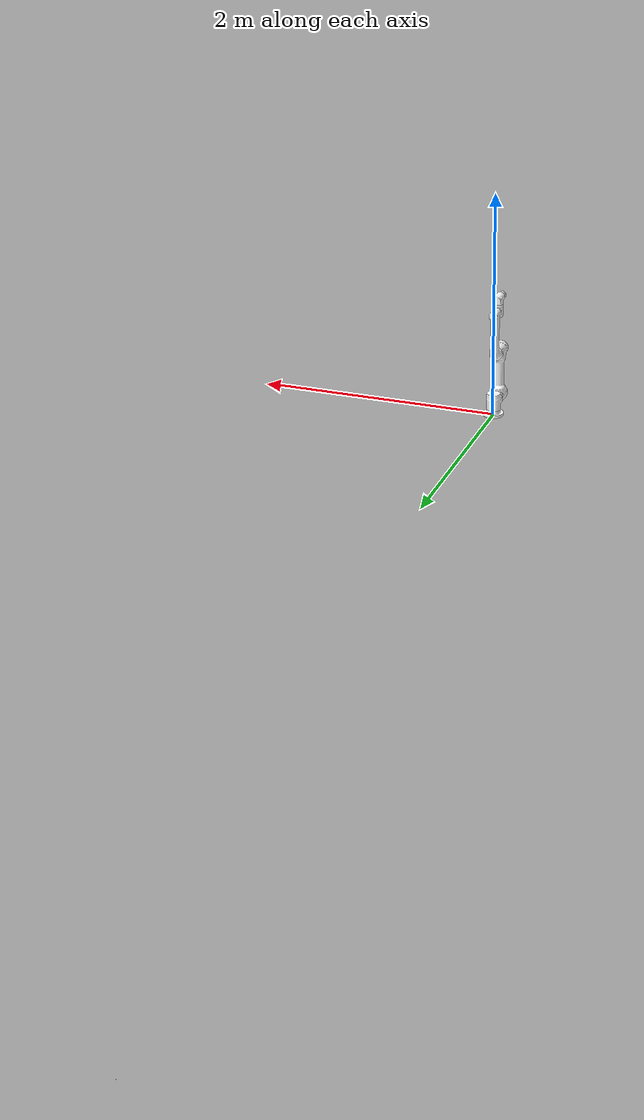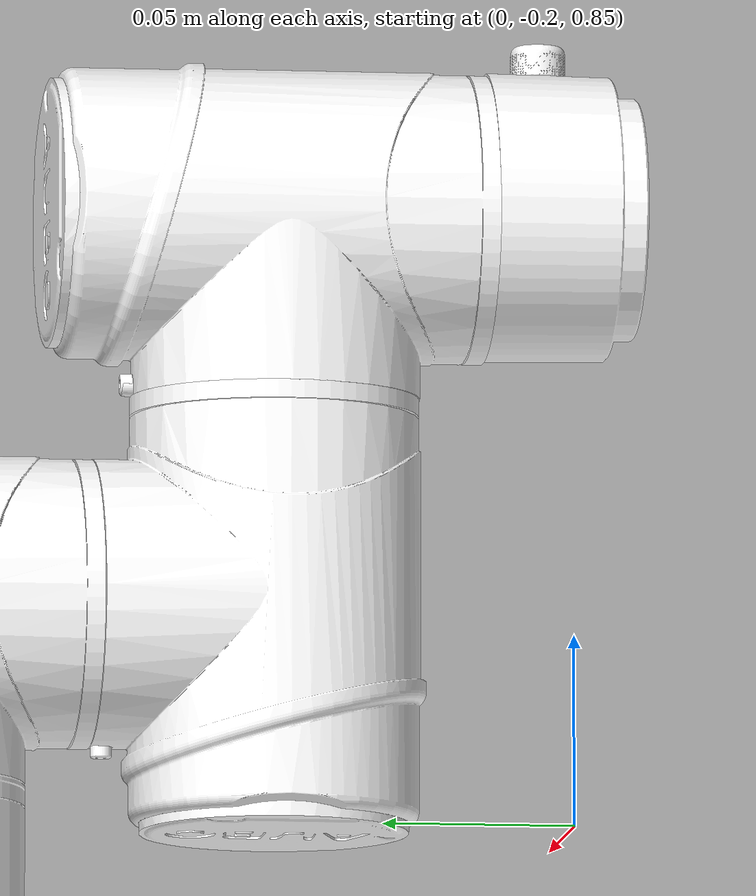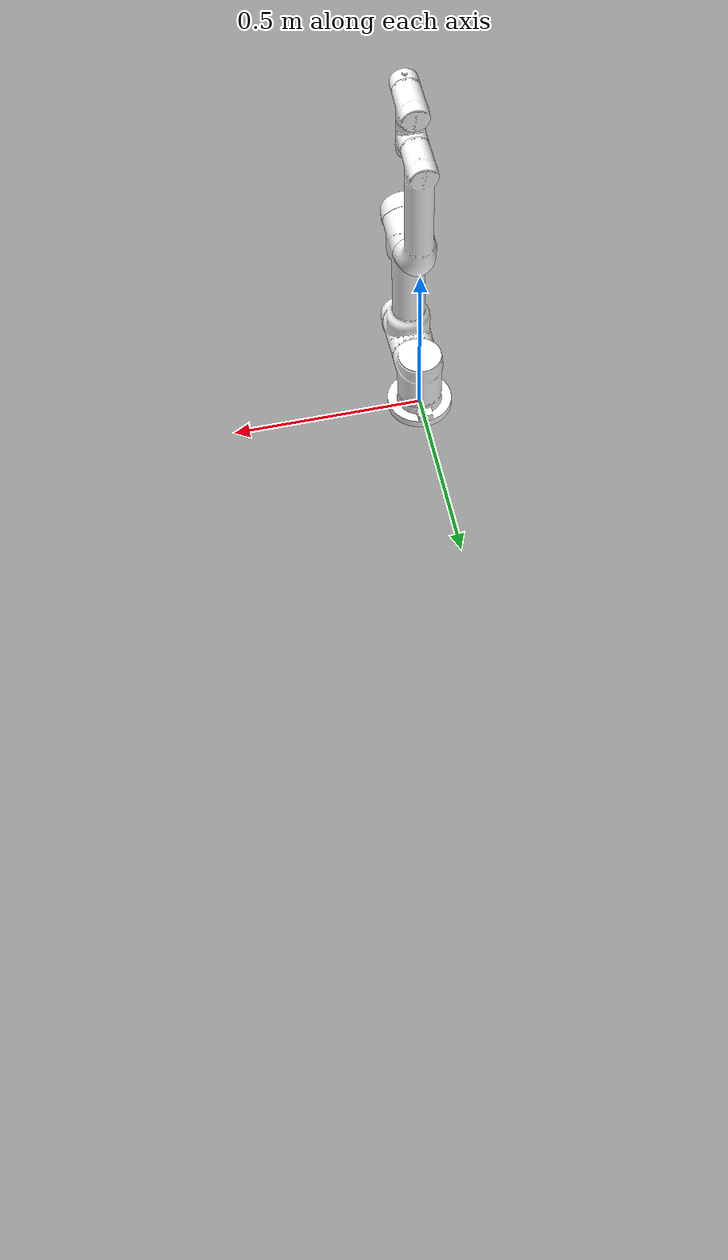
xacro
<?xml version="1.0"?>
<robot name="aubo_i5" xmlns:xacro="http://ros.org/wiki/xacro">

 <!-- Keep the original stand-alone behaviour by default.  Composite robots can
      disable the world joint and place ros_control in another namespace. -->
    <xacro:arg name="standalone" default="true"/>
    <xacro:arg name="robot_namespace" default="/aubo_i5"/>

 <!-- Defining the colors used in this robot -->
    <material name="Black">
        <color rgba="0 0 0 1"/>
    </material>

    <material name="White">
        <color rgba="1 1 1 1"/>
    </material>

    <material name="Blue">
        <color rgba="0 0 1 1"/>
    </material>

    <material name="Red">
        <color rgba="1 0 0 1"/>
    </material>

    <material name="Grey">
        <color rgba="0.96 0.96 0.96 1"/>
    </material>

    <!-- Constants -->
    <xacro:property name="M_PI" value="3.14159"/>

    <!--/////////////////// DYNAMICS PARAM //////////////////////-->

    <xacro:macro name="I5_Shoulder_Inertia">
        <origin xyz="0.0 0.006 -0.002"
                rpy="0 0 0" />
        <mass value="5.05" />
        <inertia ixx="0.0148"
                 ixy="0"
                 ixz="0"
                 iyy="0.0143"
                 iyz="-0.0"
                 izz="0.0095" />
    </xacro:macro>

    <xacro:macro name="I5_UpperArm_Inertia">
        <origin xyz="0.304 0.0 -0.03"
                rpy="0 0 0" />
        <mass value="11.90" />
        <inertia ixx="0.0305"
                 ixy="0"
                 ixz="0"
                 iyy="0.4505"
                 iyz="0"
                 izz="0.0095" />
    </xacro:macro>

    <xacro:macro name="I5_ForeArm_Inertia">
        <origin xyz="0.415 0.0 0.0992"
                rpy="0 0 0" />
        <mass  value="3.3" />
        <inertia ixx="0.0033"
                 ixy="0"
                 ixz="0.0009"
                 iyy="0.0575"
                 iyz="0"
                 izz="0.0565" />
    </xacro:macro>

    <xacro:macro name="I5_Wrist1_Inertia">
        <origin xyz="0.0 0.0028 -0.003"
                rpy="0 0 0" />
        <mass value="1.62" />
        <inertia ixx="0.0023"
                 ixy="0"
                 ixz="0"
                 iyy="0.0013"
                 iyz="0.0"
                 izz="0.0022" />
    </xacro:macro>

    <xacro:macro name="I5_Wrist2_Inertia">
        <origin xyz="0.0 -0.0028 -0.003"
                rpy="0 0 0" />
        <mass value="1.62" />
        <inertia ixx="0.0023"
                 ixy="0"
                 ixz="0"
                 iyy="0.0013"
                 iyz="0.0"
                 izz="0.0022" />
    </xacro:macro>

    <xacro:macro name="I5_Wrist3_Inertia">
        <origin xyz="0.0 0.0 -0.0071"
                rpy="0 0 0" />
        <mass value="0.40" />
        <inertia ixx="0.013939"
                 ixy="0"
                 ixz="0"
                 iyy="0.013988"
                 iyz="0.0"
                 izz="0.0224092" />
    </xacro:macro>

    <!--/////////////////////////////// BASE_LINK ////////////////////////////////////-->

   <link name="base_link">
    <inertial>
      <origin xyz="-1.4795E-13 0.0015384 0.020951" rpy="0 0 0" />
      <mass value="0.83419" />
      <inertia ixx="0.0014414" ixy="7.8809E-15" ixz="8.5328E-16" iyy="0.0013542" iyz="-1.4364E-05" izz="0.0024659" />
    </inertial>
    <visual>
      <origin xyz="0 0 0" rpy="0 0 0" />
      <geometry>
        <mesh filename="package://aubo_description/meshes/aubo_i5/visual/base_link.DAE" />
      </geometry>
      <material name="">
        <color rgba="1 1 1 1" />
      </material>
    </visual>
    <collision>
      <origin xyz="0 0 0" rpy="0 0 0" />
      <geometry>
        <mesh filename="package://aubo_description/meshes/aubo_i5/collision/base_link.STL" />
      </geometry>
    </collision>
  </link>

  <!--/////////////////////////////// SHOULDER_LINK ////////////////////////////////////-->
  <link name="shoulder_Link">
    <inertial>
      <xacro:I5_Shoulder_Inertia />
    </inertial>
    <visual>
      <origin xyz="0 0 0" rpy="0 0 0" />
      <geometry>
        <mesh filename="package://aubo_description/meshes/aubo_i5/visual/shoulder_Link.DAE" />
      </geometry>
      <material name="">
        <color rgba="1 1 1 1" />
      </material>
    </visual>
    <collision>
      <origin xyz="0 0 0" rpy="0 0 0" />
      <geometry>
        <mesh filename="package://aubo_description/meshes/aubo_i5/collision/shoulder_Link.STL" />
      </geometry>
    </collision>
  </link>

  <!--/////////////////////////////// SHOULDER_JOINT ////////////////////////////////////-->
  <joint name="shoulder_joint" type="revolute">
    <origin xyz="0 0 0.122" rpy="0 0 3.1416" />
    <parent link="base_link" />
    <child link="shoulder_Link" />
    <axis xyz="0 0 1" />
    <limit lower="-3.04" upper="3.04" effort="300" velocity="100" />
  </joint>

  <!--/////////////////////////////// UPPERARM_LINK ////////////////////////////////////-->
  <link name="upperArm_Link">
    <inertial>
      <xacro:I5_UpperArm_Inertia />
    </inertial>
    <visual>
      <origin xyz="0 0 0" rpy="0 0 0" />
      <geometry>
        <mesh filename="package://aubo_description/meshes/aubo_i5/visual/upperArm_Link.DAE" />
      </geometry>
      <material name="">
        <color rgba="1 1 1 1" />
      </material>
    </visual>
    <collision>
      <origin xyz="0 0 0" rpy="0 0 0" />
      <geometry>
        <mesh filename="package://aubo_description/meshes/aubo_i5/collision/upperArm_Link.STL" />
      </geometry>
    </collision>
  </link>

  <!--/////////////////////////////// UPPERARM_JOINT ////////////////////////////////////-->
  <joint name="upperArm_joint" type="revolute">
    <origin xyz="0 0.1215 0" rpy="-1.5708 -1.5708 0" />
    <parent link="shoulder_Link" />
    <child link="upperArm_Link" />
    <axis xyz="0 0 1" />
    <!-- Restrict the second actuated joint to -60 deg ... +60 deg. -->
    <limit lower="-1.0471976" upper="1.0471976" effort="300" velocity="100" />
  </joint>

  <!--/////////////////////////////// FOREARM_LINK ////////////////////////////////////-->
  <link name="foreArm_Link">
    <inertial>
      <xacro:I5_ForeArm_Inertia />
    </inertial>
    <visual>
      <origin xyz="0 0 0" rpy="0 0 0" />
      <geometry>
        <mesh filename="package://aubo_description/meshes/aubo_i5/visual/foreArm_Link.DAE" />
      </geometry>
      <material name="">
        <color rgba="1 1 1 1" />
      </material>
    </visual>
    <collision>
      <origin xyz="0 0 0" rpy="0 0 0" />
      <geometry>
        <mesh filename="package://aubo_description/meshes/aubo_i5/collision/foreArm_Link.STL" />
      </geometry>
    </collision>
  </link>

  <!--/////////////////////////////// FOREARM_JOINT ////////////////////////////////////-->
  <joint name="foreArm_joint" type="revolute">
    <origin xyz="0.408 0 0" rpy="-3.1416 -5.1632E-18 -5.459E-16" />
    <parent link="upperArm_Link" />
    <child link="foreArm_Link" />
    <axis xyz="0 0 1" />
    <limit lower="-3.04" upper="3.04" effort="300" velocity="100" />
  </joint>

  <!--/////////////////////////////// WRIST1_LINK ////////////////////////////////////-->
  <link name="wrist1_Link">
    <inertial>
      <xacro:I5_Wrist1_Inertia />
    </inertial>
    <visual>
      <origin xyz="0 0 0" rpy="0 0 0" />
      <geometry>
        <mesh filename="package://aubo_description/meshes/aubo_i5/visual/wrist1_Link.DAE" />
      </geometry>
      <material name="">
        <color rgba="1 1 1 1" />
      </material>
    </visual>
    <collision>
      <origin xyz="0 0 0" rpy="0 0 0" />
      <geometry>
        <mesh filename="package://aubo_description/meshes/aubo_i5/collision/wrist1_Link.STL" />
      </geometry>
    </collision>
  </link>

  <!--/////////////////////////////// WRIST1_JOINT ////////////////////////////////////-->
  <joint name="wrist1_joint" type="revolute">
    <origin xyz="0.376 0 0" rpy="3.1416 -1.8323E-15 1.5708" />
    <parent link="foreArm_Link" />
    <child link="wrist1_Link" />
    <axis xyz="0 0 1" />
    <limit lower="-3.04" upper="3.04" effort="300" velocity="100" />
  </joint>

  <!--/////////////////////////////// WRIST2_LINK ////////////////////////////////////-->
  <link name="wrist2_Link">
    <inertial>
      <xacro:I5_Wrist2_Inertia />
    </inertial>
    <visual>
      <origin xyz="0 0 0" rpy="0 0 0" />
      <geometry>
        <mesh filename="package://aubo_description/meshes/aubo_i5/visual/wrist2_Link.DAE" />
      </geometry>
      <material name="">
        <color rgba="1 1 1 1" />
      </material>
    </visual>
    <collision>
      <origin xyz="0 0 0" rpy="0 0 0" />
      <geometry>
        <mesh filename="package://aubo_description/meshes/aubo_i5/collision/wrist2_Link.STL" />
      </geometry>
    </collision>
  </link>

  <!--/////////////////////////////// WRIST2_JOINT ////////////////////////////////////-->
  <joint name="wrist2_joint" type="revolute">
    <origin xyz="0 0.1025 0" rpy="-1.5708 -1.8709E-15 -1.6653E-16" />
    <parent link="wrist1_Link" />
    <child link="wrist2_Link" />
    <axis xyz="0 0 1" />
    <limit lower="-3.04" upper="3.04" effort="300" velocity="100" />
  </joint>

  <!--/////////////////////////////// WRIST3_LINK ////////////////////////////////////-->
  <link name="wrist3_Link">
    <inertial>
      <xacro:I5_Wrist3_Inertia />
    </inertial>
    <visual>
      <origin xyz="0 0 0" rpy="0 0 0" />
      <geometry>
        <mesh filename="package://aubo_description/meshes/aubo_i5/visual/wrist3_Link.DAE" />
      </geometry>
      <material name="">
        <color rgba="1 1 1 1" />
      </material>
    </visual>
    <collision>
      <origin xyz="0 0 0" rpy="0 0 0" />
      <geometry>
        <mesh filename="package://aubo_description/meshes/aubo_i5/collision/wrist3_Link.STL" />
      </geometry>
    </collision>
  </link>

  <!--/////////////////////////////// WRIST3_JOINT ////////////////////////////////////-->
  <joint name="wrist3_joint" type="revolute">
    <origin xyz="0 -0.094 0" rpy="1.5708 0 1.7907E-15" />
    <parent link="wrist2_Link" />
    <child link="wrist3_Link" />
    <axis xyz="0 0 1" />
    <limit lower="-3.04" upper="3.04" effort="300" velocity="100" />
  </joint>

 <!-- /////////////////////////////////   world   ////////////////////////////////////// -->
  <xacro:if value="$(arg standalone)">
    <link name="world" />

    <joint name="world_joint" type="fixed">
      <parent link="world" />
      <child link ="base_link" />
      <origin xyz="0.0 0.0 0.0" rpy="0.0 0.0 0.0" />
    </joint>
  </xacro:if>

  <!-- /////////////////////////////////   gazebo color   ////////////////////////////////////// -->

  <!--////////////////////////////////// Transmissions for ROS Control //////////////////////////-->

<xacro:macro name="aubo_arm_transmission" params="joint_name">
     <transmission name="${joint_name}_trans">
       <type>transmission_interface/SimpleTransmission</type>
       <joint name="${joint_name}">
         <hardwareInterface>hardware_interface/PositionJointInterface</hardwareInterface>
       </joint>
       <actuator name="${joint_name}_motor">
	       <hardwareInterface>hardware_interface/PositionJointInterface</hardwareInterface>
         <mechanicalReduction>1</mechanicalReduction>
       </actuator>
     </transmission>
 </xacro:macro>

  <xacro:aubo_arm_transmission joint_name="shoulder_joint"/>
  <xacro:aubo_arm_transmission joint_name="upperArm_joint"/>
  <xacro:aubo_arm_transmission joint_name="foreArm_joint"/>
  <xacro:aubo_arm_transmission joint_name="wrist1_joint"/>
  <xacro:aubo_arm_transmission joint_name="wrist2_joint"/>
  <xacro:aubo_arm_transmission joint_name="wrist3_joint"/>

  <!-- ros_control plugin -->
  <gazebo>
      <plugin name="gazebo_ros_control" filename="libgazebo_ros_control.so">
          <robotNamespace>$(arg robot_namespace)</robotNamespace>
	        <robotSimType>gazebo_ros_control/DefaultRobotHWSim</robotSimType>
          <legacyModeNS>true</legacyModeNS>
      </plugin>
  </gazebo>

</robot>
